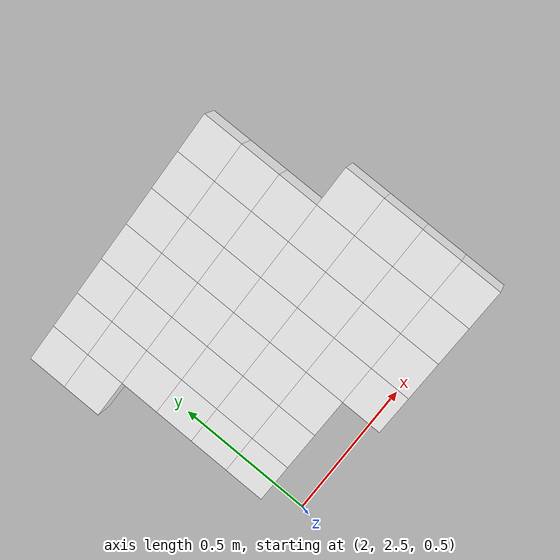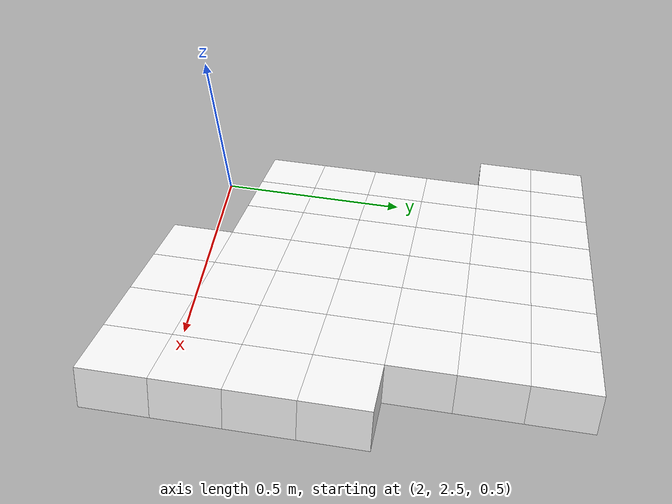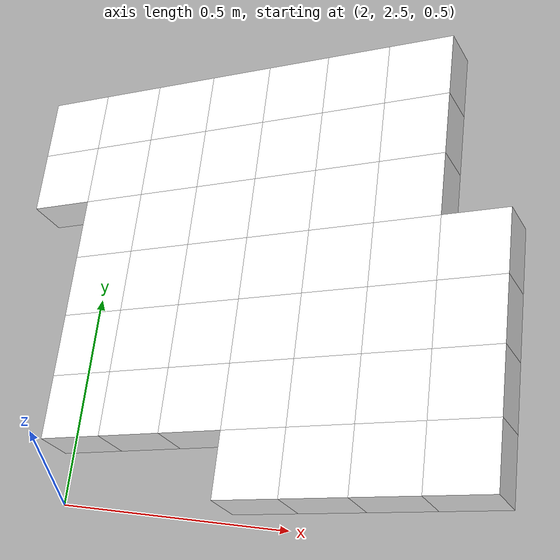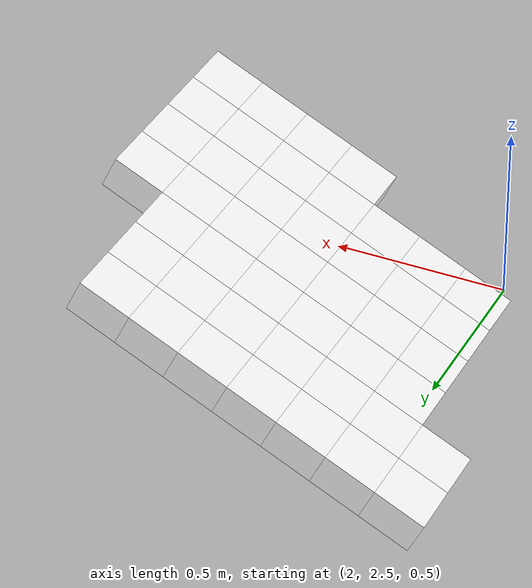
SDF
<sdf version="1.7">
 <world name="default">
  <include><uri>model://sun</uri></include>
  <model name="static_environment">
   <static>true</static>
   <link name="region_671">
    <pose>2.426885046534956 2.5499999999999994 0.7502299879138344 0.0 -0.45 0.0</pose>
    <collision name="region_671_collision">
     <geometry><box><size>0.15 0.15 0.1</size></box></geometry>
     <surface><friction><ode><mu>1.0</mu><mu2>1.0</mu2></ode></friction></surface>
    </collision>
    <visual name="region_671_visual">
     <geometry><box><size>0.15 0.15 0.1</size></box></geometry>
     <material><ambient>1.0 1.0 1.0 1.0</ambient><diffuse>1.0 1.0 1.0 1.0</diffuse></material>
    </visual>
   </link>
   <link name="region_672">
    <pose>2.5619521118878588 2.5499999999999994 0.815474818030519 0.0 -0.45 0.0</pose>
    <collision name="region_672_collision">
     <geometry><box><size>0.15 0.15 0.1</size></box></geometry>
     <surface><friction><ode><mu>1.0</mu><mu2>1.0</mu2></ode></friction></surface>
    </collision>
    <visual name="region_672_visual">
     <geometry><box><size>0.15 0.15 0.1</size></box></geometry>
     <material><ambient>1.0 1.0 1.0 1.0</ambient><diffuse>1.0 1.0 1.0 1.0</diffuse></material>
    </visual>
   </link>
   <link name="region_673">
    <pose>2.69701917724076 2.5499999999999994 0.8807196481472036 0.0 -0.45 0.0</pose>
    <collision name="region_673_collision">
     <geometry><box><size>0.15 0.15 0.1</size></box></geometry>
     <surface><friction><ode><mu>1.0</mu><mu2>1.0</mu2></ode></friction></surface>
    </collision>
    <visual name="region_673_visual">
     <geometry><box><size>0.15 0.15 0.1</size></box></geometry>
     <material><ambient>1.0 1.0 1.0 1.0</ambient><diffuse>1.0 1.0 1.0 1.0</diffuse></material>
    </visual>
   </link>
   <link name="region_674">
    <pose>2.832086242593662 2.5499999999999994 0.9459644782638886 0.0 -0.45 0.0</pose>
    <collision name="region_674_collision">
     <geometry><box><size>0.15 0.15 0.1</size></box></geometry>
     <surface><friction><ode><mu>1.0</mu><mu2>1.0</mu2></ode></friction></surface>
    </collision>
    <visual name="region_674_visual">
     <geometry><box><size>0.15 0.15 0.1</size></box></geometry>
     <material><ambient>1.0 1.0 1.0 1.0</ambient><diffuse>1.0 1.0 1.0 1.0</diffuse></material>
    </visual>
   </link>
   <link name="region_688">
    <pose>2.0216838504762515 2.6999999999999997 0.5544954975637805 0.0 -0.45 0.0</pose>
    <collision name="region_688_collision">
     <geometry><box><size>0.15 0.15 0.1</size></box></geometry>
     <surface><friction><ode><mu>1.0</mu><mu2>1.0</mu2></ode></friction></surface>
    </collision>
    <visual name="region_688_visual">
     <geometry><box><size>0.15 0.15 0.1</size></box></geometry>
     <material><ambient>1.0 1.0 1.0 1.0</ambient><diffuse>1.0 1.0 1.0 1.0</diffuse></material>
    </visual>
   </link>
   <link name="region_689">
    <pose>2.1567509158291527 2.6999999999999997 0.619740327680465 0.0 -0.45 0.0</pose>
    <collision name="region_689_collision">
     <geometry><box><size>0.15 0.15 0.1</size></box></geometry>
     <surface><friction><ode><mu>1.0</mu><mu2>1.0</mu2></ode></friction></surface>
    </collision>
    <visual name="region_689_visual">
     <geometry><box><size>0.15 0.15 0.1</size></box></geometry>
     <material><ambient>1.0 1.0 1.0 1.0</ambient><diffuse>1.0 1.0 1.0 1.0</diffuse></material>
    </visual>
   </link>
   <link name="region_690">
    <pose>2.2918179811820547 2.6999999999999997 0.6849851577971496 0.0 -0.45 0.0</pose>
    <collision name="region_690_collision">
     <geometry><box><size>0.15 0.15 0.1</size></box></geometry>
     <surface><friction><ode><mu>1.0</mu><mu2>1.0</mu2></ode></friction></surface>
    </collision>
    <visual name="region_690_visual">
     <geometry><box><size>0.15 0.15 0.1</size></box></geometry>
     <material><ambient>1.0 1.0 1.0 1.0</ambient><diffuse>1.0 1.0 1.0 1.0</diffuse></material>
    </visual>
   </link>
   <link name="region_691">
    <pose>2.426885046534956 2.6999999999999997 0.7502299879138344 0.0 -0.45 0.0</pose>
    <collision name="region_691_collision">
     <geometry><box><size>0.15 0.15 0.1</size></box></geometry>
     <surface><friction><ode><mu>1.0</mu><mu2>1.0</mu2></ode></friction></surface>
    </collision>
    <visual name="region_691_visual">
     <geometry><box><size>0.15 0.15 0.1</size></box></geometry>
     <material><ambient>1.0 1.0 1.0 1.0</ambient><diffuse>1.0 1.0 1.0 1.0</diffuse></material>
    </visual>
   </link>
   <link name="region_692">
    <pose>2.5619521118878588 2.6999999999999997 0.815474818030519 0.0 -0.45 0.0</pose>
    <collision name="region_692_collision">
     <geometry><box><size>0.15 0.15 0.1</size></box></geometry>
     <surface><friction><ode><mu>1.0</mu><mu2>1.0</mu2></ode></friction></surface>
    </collision>
    <visual name="region_692_visual">
     <geometry><box><size>0.15 0.15 0.1</size></box></geometry>
     <material><ambient>1.0 1.0 1.0 1.0</ambient><diffuse>1.0 1.0 1.0 1.0</diffuse></material>
    </visual>
   </link>
   <link name="region_693">
    <pose>2.69701917724076 2.6999999999999997 0.8807196481472036 0.0 -0.45 0.0</pose>
    <collision name="region_693_collision">
     <geometry><box><size>0.15 0.15 0.1</size></box></geometry>
     <surface><friction><ode><mu>1.0</mu><mu2>1.0</mu2></ode></friction></surface>
    </collision>
    <visual name="region_693_visual">
     <geometry><box><size>0.15 0.15 0.1</size></box></geometry>
     <material><ambient>1.0 1.0 1.0 1.0</ambient><diffuse>1.0 1.0 1.0 1.0</diffuse></material>
    </visual>
   </link>
   <link name="region_694">
    <pose>2.832086242593662 2.6999999999999997 0.9459644782638886 0.0 -0.45 0.0</pose>
    <collision name="region_694_collision">
     <geometry><box><size>0.15 0.15 0.1</size></box></geometry>
     <surface><friction><ode><mu>1.0</mu><mu2>1.0</mu2></ode></friction></surface>
    </collision>
    <visual name="region_694_visual">
     <geometry><box><size>0.15 0.15 0.1</size></box></geometry>
     <material><ambient>1.0 1.0 1.0 1.0</ambient><diffuse>1.0 1.0 1.0 1.0</diffuse></material>
    </visual>
   </link>
   <link name="region_708">
    <pose>2.0216838504762515 2.8499999999999996 0.5544954975637805 0.0 -0.45 0.0</pose>
    <collision name="region_708_collision">
     <geometry><box><size>0.15 0.15 0.1</size></box></geometry>
     <surface><friction><ode><mu>1.0</mu><mu2>1.0</mu2></ode></friction></surface>
    </collision>
    <visual name="region_708_visual">
     <geometry><box><size>0.15 0.15 0.1</size></box></geometry>
     <material><ambient>1.0 1.0 1.0 1.0</ambient><diffuse>1.0 1.0 1.0 1.0</diffuse></material>
    </visual>
   </link>
   <link name="region_709">
    <pose>2.1567509158291527 2.8499999999999996 0.619740327680465 0.0 -0.45 0.0</pose>
    <collision name="region_709_collision">
     <geometry><box><size>0.15 0.15 0.1</size></box></geometry>
     <surface><friction><ode><mu>1.0</mu><mu2>1.0</mu2></ode></friction></surface>
    </collision>
    <visual name="region_709_visual">
     <geometry><box><size>0.15 0.15 0.1</size></box></geometry>
     <material><ambient>1.0 1.0 1.0 1.0</ambient><diffuse>1.0 1.0 1.0 1.0</diffuse></material>
    </visual>
   </link>
   <link name="region_710">
    <pose>2.2918179811820547 2.8499999999999996 0.6849851577971496 0.0 -0.45 0.0</pose>
    <collision name="region_710_collision">
     <geometry><box><size>0.15 0.15 0.1</size></box></geometry>
     <surface><friction><ode><mu>1.0</mu><mu2>1.0</mu2></ode></friction></surface>
    </collision>
    <visual name="region_710_visual">
     <geometry><box><size>0.15 0.15 0.1</size></box></geometry>
     <material><ambient>1.0 1.0 1.0 1.0</ambient><diffuse>1.0 1.0 1.0 1.0</diffuse></material>
    </visual>
   </link>
   <link name="region_711">
    <pose>2.426885046534956 2.8499999999999996 0.7502299879138344 0.0 -0.45 0.0</pose>
    <collision name="region_711_collision">
     <geometry><box><size>0.15 0.15 0.1</size></box></geometry>
     <surface><friction><ode><mu>1.0</mu><mu2>1.0</mu2></ode></friction></surface>
    </collision>
    <visual name="region_711_visual">
     <geometry><box><size>0.15 0.15 0.1</size></box></geometry>
     <material><ambient>1.0 1.0 1.0 1.0</ambient><diffuse>1.0 1.0 1.0 1.0</diffuse></material>
    </visual>
   </link>
   <link name="region_712">
    <pose>2.5619521118878588 2.8499999999999996 0.815474818030519 0.0 -0.45 0.0</pose>
    <collision name="region_712_collision">
     <geometry><box><size>0.15 0.15 0.1</size></box></geometry>
     <surface><friction><ode><mu>1.0</mu><mu2>1.0</mu2></ode></friction></surface>
    </collision>
    <visual name="region_712_visual">
     <geometry><box><size>0.15 0.15 0.1</size></box></geometry>
     <material><ambient>1.0 1.0 1.0 1.0</ambient><diffuse>1.0 1.0 1.0 1.0</diffuse></material>
    </visual>
   </link>
   <link name="region_713">
    <pose>2.69701917724076 2.8499999999999996 0.8807196481472036 0.0 -0.45 0.0</pose>
    <collision name="region_713_collision">
     <geometry><box><size>0.15 0.15 0.1</size></box></geometry>
     <surface><friction><ode><mu>1.0</mu><mu2>1.0</mu2></ode></friction></surface>
    </collision>
    <visual name="region_713_visual">
     <geometry><box><size>0.15 0.15 0.1</size></box></geometry>
     <material><ambient>1.0 1.0 1.0 1.0</ambient><diffuse>1.0 1.0 1.0 1.0</diffuse></material>
    </visual>
   </link>
   <link name="region_714">
    <pose>2.832086242593662 2.8499999999999996 0.9459644782638886 0.0 -0.45 0.0</pose>
    <collision name="region_714_collision">
     <geometry><box><size>0.15 0.15 0.1</size></box></geometry>
     <surface><friction><ode><mu>1.0</mu><mu2>1.0</mu2></ode></friction></surface>
    </collision>
    <visual name="region_714_visual">
     <geometry><box><size>0.15 0.15 0.1</size></box></geometry>
     <material><ambient>1.0 1.0 1.0 1.0</ambient><diffuse>1.0 1.0 1.0 1.0</diffuse></material>
    </visual>
   </link>
   <link name="region_728">
    <pose>2.0216838504762515 2.9999999999999996 0.5544954975637805 0.0 -0.45 0.0</pose>
    <collision name="region_728_collision">
     <geometry><box><size>0.15 0.15 0.1</size></box></geometry>
     <surface><friction><ode><mu>1.0</mu><mu2>1.0</mu2></ode></friction></surface>
    </collision>
    <visual name="region_728_visual">
     <geometry><box><size>0.15 0.15 0.1</size></box></geometry>
     <material><ambient>1.0 1.0 1.0 1.0</ambient><diffuse>1.0 1.0 1.0 1.0</diffuse></material>
    </visual>
   </link>
   <link name="region_729">
    <pose>2.1567509158291527 2.9999999999999996 0.619740327680465 0.0 -0.45 0.0</pose>
    <collision name="region_729_collision">
     <geometry><box><size>0.15 0.15 0.1</size></box></geometry>
     <surface><friction><ode><mu>1.0</mu><mu2>1.0</mu2></ode></friction></surface>
    </collision>
    <visual name="region_729_visual">
     <geometry><box><size>0.15 0.15 0.1</size></box></geometry>
     <material><ambient>1.0 1.0 1.0 1.0</ambient><diffuse>1.0 1.0 1.0 1.0</diffuse></material>
    </visual>
   </link>
   <link name="region_730">
    <pose>2.2918179811820547 2.9999999999999996 0.6849851577971496 0.0 -0.45 0.0</pose>
    <collision name="region_730_collision">
     <geometry><box><size>0.15 0.15 0.1</size></box></geometry>
     <surface><friction><ode><mu>1.0</mu><mu2>1.0</mu2></ode></friction></surface>
    </collision>
    <visual name="region_730_visual">
     <geometry><box><size>0.15 0.15 0.1</size></box></geometry>
     <material><ambient>1.0 1.0 1.0 1.0</ambient><diffuse>1.0 1.0 1.0 1.0</diffuse></material>
    </visual>
   </link>
   <link name="region_731">
    <pose>2.426885046534956 2.9999999999999996 0.7502299879138344 0.0 -0.45 0.0</pose>
    <collision name="region_731_collision">
     <geometry><box><size>0.15 0.15 0.1</size></box></geometry>
     <surface><friction><ode><mu>1.0</mu><mu2>1.0</mu2></ode></friction></surface>
    </collision>
    <visual name="region_731_visual">
     <geometry><box><size>0.15 0.15 0.1</size></box></geometry>
     <material><ambient>1.0 1.0 1.0 1.0</ambient><diffuse>1.0 1.0 1.0 1.0</diffuse></material>
    </visual>
   </link>
   <link name="region_732">
    <pose>2.5619521118878588 2.9999999999999996 0.815474818030519 0.0 -0.45 0.0</pose>
    <collision name="region_732_collision">
     <geometry><box><size>0.15 0.15 0.1</size></box></geometry>
     <surface><friction><ode><mu>1.0</mu><mu2>1.0</mu2></ode></friction></surface>
    </collision>
    <visual name="region_732_visual">
     <geometry><box><size>0.15 0.15 0.1</size></box></geometry>
     <material><ambient>1.0 1.0 1.0 1.0</ambient><diffuse>1.0 1.0 1.0 1.0</diffuse></material>
    </visual>
   </link>
   <link name="region_733">
    <pose>2.69701917724076 2.9999999999999996 0.8807196481472036 0.0 -0.45 0.0</pose>
    <collision name="region_733_collision">
     <geometry><box><size>0.15 0.15 0.1</size></box></geometry>
     <surface><friction><ode><mu>1.0</mu><mu2>1.0</mu2></ode></friction></surface>
    </collision>
    <visual name="region_733_visual">
     <geometry><box><size>0.15 0.15 0.1</size></box></geometry>
     <material><ambient>1.0 1.0 1.0 1.0</ambient><diffuse>1.0 1.0 1.0 1.0</diffuse></material>
    </visual>
   </link>
   <link name="region_734">
    <pose>2.832086242593662 2.9999999999999996 0.9459644782638886 0.0 -0.45 0.0</pose>
    <collision name="region_734_collision">
     <geometry><box><size>0.15 0.15 0.1</size></box></geometry>
     <surface><friction><ode><mu>1.0</mu><mu2>1.0</mu2></ode></friction></surface>
    </collision>
    <visual name="region_734_visual">
     <geometry><box><size>0.15 0.15 0.1</size></box></geometry>
     <material><ambient>1.0 1.0 1.0 1.0</ambient><diffuse>1.0 1.0 1.0 1.0</diffuse></material>
    </visual>
   </link>
   <link name="region_748">
    <pose>2.0216838504762515 3.1499999999999995 0.5544954975637805 0.0 -0.45 0.0</pose>
    <collision name="region_748_collision">
     <geometry><box><size>0.15 0.15 0.1</size></box></geometry>
     <surface><friction><ode><mu>1.0</mu><mu2>1.0</mu2></ode></friction></surface>
    </collision>
    <visual name="region_748_visual">
     <geometry><box><size>0.15 0.15 0.1</size></box></geometry>
     <material><ambient>1.0 1.0 1.0 1.0</ambient><diffuse>1.0 1.0 1.0 1.0</diffuse></material>
    </visual>
   </link>
   <link name="region_749">
    <pose>2.1567509158291527 3.1499999999999995 0.619740327680465 0.0 -0.45 0.0</pose>
    <collision name="region_749_collision">
     <geometry><box><size>0.15 0.15 0.1</size></box></geometry>
     <surface><friction><ode><mu>1.0</mu><mu2>1.0</mu2></ode></friction></surface>
    </collision>
    <visual name="region_749_visual">
     <geometry><box><size>0.15 0.15 0.1</size></box></geometry>
     <material><ambient>1.0 1.0 1.0 1.0</ambient><diffuse>1.0 1.0 1.0 1.0</diffuse></material>
    </visual>
   </link>
   <link name="region_750">
    <pose>2.2918179811820547 3.1499999999999995 0.6849851577971496 0.0 -0.45 0.0</pose>
    <collision name="region_750_collision">
     <geometry><box><size>0.15 0.15 0.1</size></box></geometry>
     <surface><friction><ode><mu>1.0</mu><mu2>1.0</mu2></ode></friction></surface>
    </collision>
    <visual name="region_750_visual">
     <geometry><box><size>0.15 0.15 0.1</size></box></geometry>
     <material><ambient>1.0 1.0 1.0 1.0</ambient><diffuse>1.0 1.0 1.0 1.0</diffuse></material>
    </visual>
   </link>
   <link name="region_751">
    <pose>2.426885046534956 3.1499999999999995 0.7502299879138344 0.0 -0.45 0.0</pose>
    <collision name="region_751_collision">
     <geometry><box><size>0.15 0.15 0.1</size></box></geometry>
     <surface><friction><ode><mu>1.0</mu><mu2>1.0</mu2></ode></friction></surface>
    </collision>
    <visual name="region_751_visual">
     <geometry><box><size>0.15 0.15 0.1</size></box></geometry>
     <material><ambient>1.0 1.0 1.0 1.0</ambient><diffuse>1.0 1.0 1.0 1.0</diffuse></material>
    </visual>
   </link>
   <link name="region_752">
    <pose>2.5619521118878588 3.1499999999999995 0.815474818030519 0.0 -0.45 0.0</pose>
    <collision name="region_752_collision">
     <geometry><box><size>0.15 0.15 0.1</size></box></geometry>
     <surface><friction><ode><mu>1.0</mu><mu2>1.0</mu2></ode></friction></surface>
    </collision>
    <visual name="region_752_visual">
     <geometry><box><size>0.15 0.15 0.1</size></box></geometry>
     <material><ambient>1.0 1.0 1.0 1.0</ambient><diffuse>1.0 1.0 1.0 1.0</diffuse></material>
    </visual>
   </link>
   <link name="region_753">
    <pose>2.69701917724076 3.1499999999999995 0.8807196481472036 0.0 -0.45 0.0</pose>
    <collision name="region_753_collision">
     <geometry><box><size>0.15 0.15 0.1</size></box></geometry>
     <surface><friction><ode><mu>1.0</mu><mu2>1.0</mu2></ode></friction></surface>
    </collision>
    <visual name="region_753_visual">
     <geometry><box><size>0.15 0.15 0.1</size></box></geometry>
     <material><ambient>1.0 1.0 1.0 1.0</ambient><diffuse>1.0 1.0 1.0 1.0</diffuse></material>
    </visual>
   </link>
   <link name="region_767">
    <pose>1.88661678512335 3.2999999999999994 0.4892506674470961 0.0 -0.45 0.0</pose>
    <collision name="region_767_collision">
     <geometry><box><size>0.15 0.15 0.1</size></box></geometry>
     <surface><friction><ode><mu>1.0</mu><mu2>1.0</mu2></ode></friction></surface>
    </collision>
    <visual name="region_767_visual">
     <geometry><box><size>0.15 0.15 0.1</size></box></geometry>
     <material><ambient>1.0 1.0 1.0 1.0</ambient><diffuse>1.0 1.0 1.0 1.0</diffuse></material>
    </visual>
   </link>
   <link name="region_768">
    <pose>2.0216838504762515 3.2999999999999994 0.5544954975637805 0.0 -0.45 0.0</pose>
    <collision name="region_768_collision">
     <geometry><box><size>0.15 0.15 0.1</size></box></geometry>
     <surface><friction><ode><mu>1.0</mu><mu2>1.0</mu2></ode></friction></surface>
    </collision>
    <visual name="region_768_visual">
     <geometry><box><size>0.15 0.15 0.1</size></box></geometry>
     <material><ambient>1.0 1.0 1.0 1.0</ambient><diffuse>1.0 1.0 1.0 1.0</diffuse></material>
    </visual>
   </link>
   <link name="region_769">
    <pose>2.1567509158291527 3.2999999999999994 0.619740327680465 0.0 -0.45 0.0</pose>
    <collision name="region_769_collision">
     <geometry><box><size>0.15 0.15 0.1</size></box></geometry>
     <surface><friction><ode><mu>1.0</mu><mu2>1.0</mu2></ode></friction></surface>
    </collision>
    <visual name="region_769_visual">
     <geometry><box><size>0.15 0.15 0.1</size></box></geometry>
     <material><ambient>1.0 1.0 1.0 1.0</ambient><diffuse>1.0 1.0 1.0 1.0</diffuse></material>
    </visual>
   </link>
   <link name="region_770">
    <pose>2.2918179811820547 3.2999999999999994 0.6849851577971496 0.0 -0.45 0.0</pose>
    <collision name="region_770_collision">
     <geometry><box><size>0.15 0.15 0.1</size></box></geometry>
     <surface><friction><ode><mu>1.0</mu><mu2>1.0</mu2></ode></friction></surface>
    </collision>
    <visual name="region_770_visual">
     <geometry><box><size>0.15 0.15 0.1</size></box></geometry>
     <material><ambient>1.0 1.0 1.0 1.0</ambient><diffuse>1.0 1.0 1.0 1.0</diffuse></material>
    </visual>
   </link>
   <link name="region_771">
    <pose>2.426885046534956 3.2999999999999994 0.7502299879138344 0.0 -0.45 0.0</pose>
    <collision name="region_771_collision">
     <geometry><box><size>0.15 0.15 0.1</size></box></geometry>
     <surface><friction><ode><mu>1.0</mu><mu2>1.0</mu2></ode></friction></surface>
    </collision>
    <visual name="region_771_visual">
     <geometry><box><size>0.15 0.15 0.1</size></box></geometry>
     <material><ambient>1.0 1.0 1.0 1.0</ambient><diffuse>1.0 1.0 1.0 1.0</diffuse></material>
    </visual>
   </link>
   <link name="region_772">
    <pose>2.5619521118878588 3.2999999999999994 0.815474818030519 0.0 -0.45 0.0</pose>
    <collision name="region_772_collision">
     <geometry><box><size>0.15 0.15 0.1</size></box></geometry>
     <surface><friction><ode><mu>1.0</mu><mu2>1.0</mu2></ode></friction></surface>
    </collision>
    <visual name="region_772_visual">
     <geometry><box><size>0.15 0.15 0.1</size></box></geometry>
     <material><ambient>1.0 1.0 1.0 1.0</ambient><diffuse>1.0 1.0 1.0 1.0</diffuse></material>
    </visual>
   </link>
   <link name="region_773">
    <pose>2.69701917724076 3.2999999999999994 0.8807196481472036 0.0 -0.45 0.0</pose>
    <collision name="region_773_collision">
     <geometry><box><size>0.15 0.15 0.1</size></box></geometry>
     <surface><friction><ode><mu>1.0</mu><mu2>1.0</mu2></ode></friction></surface>
    </collision>
    <visual name="region_773_visual">
     <geometry><box><size>0.15 0.15 0.1</size></box></geometry>
     <material><ambient>1.0 1.0 1.0 1.0</ambient><diffuse>1.0 1.0 1.0 1.0</diffuse></material>
    </visual>
   </link>
   <link name="region_787">
    <pose>1.88661678512335 3.4499999999999993 0.4892506674470961 0.0 -0.45 0.0</pose>
    <collision name="region_787_collision">
     <geometry><box><size>0.15 0.15 0.1</size></box></geometry>
     <surface><friction><ode><mu>1.0</mu><mu2>1.0</mu2></ode></friction></surface>
    </collision>
    <visual name="region_787_visual">
     <geometry><box><size>0.15 0.15 0.1</size></box></geometry>
     <material><ambient>1.0 1.0 1.0 1.0</ambient><diffuse>1.0 1.0 1.0 1.0</diffuse></material>
    </visual>
   </link>
   <link name="region_788">
    <pose>2.0216838504762515 3.4499999999999993 0.5544954975637805 0.0 -0.45 0.0</pose>
    <collision name="region_788_collision">
     <geometry><box><size>0.15 0.15 0.1</size></box></geometry>
     <surface><friction><ode><mu>1.0</mu><mu2>1.0</mu2></ode></friction></surface>
    </collision>
    <visual name="region_788_visual">
     <geometry><box><size>0.15 0.15 0.1</size></box></geometry>
     <material><ambient>1.0 1.0 1.0 1.0</ambient><diffuse>1.0 1.0 1.0 1.0</diffuse></material>
    </visual>
   </link>
   <link name="region_789">
    <pose>2.1567509158291527 3.4499999999999993 0.619740327680465 0.0 -0.45 0.0</pose>
    <collision name="region_789_collision">
     <geometry><box><size>0.15 0.15 0.1</size></box></geometry>
     <surface><friction><ode><mu>1.0</mu><mu2>1.0</mu2></ode></friction></surface>
    </collision>
    <visual name="region_789_visual">
     <geometry><box><size>0.15 0.15 0.1</size></box></geometry>
     <material><ambient>1.0 1.0 1.0 1.0</ambient><diffuse>1.0 1.0 1.0 1.0</diffuse></material>
    </visual>
   </link>
   <link name="region_790">
    <pose>2.2918179811820547 3.4499999999999993 0.6849851577971496 0.0 -0.45 0.0</pose>
    <collision name="region_790_collision">
     <geometry><box><size>0.15 0.15 0.1</size></box></geometry>
     <surface><friction><ode><mu>1.0</mu><mu2>1.0</mu2></ode></friction></surface>
    </collision>
    <visual name="region_790_visual">
     <geometry><box><size>0.15 0.15 0.1</size></box></geometry>
     <material><ambient>1.0 1.0 1.0 1.0</ambient><diffuse>1.0 1.0 1.0 1.0</diffuse></material>
    </visual>
   </link>
   <link name="region_791">
    <pose>2.426885046534956 3.4499999999999993 0.7502299879138344 0.0 -0.45 0.0</pose>
    <collision name="region_791_collision">
     <geometry><box><size>0.15 0.15 0.1</size></box></geometry>
     <surface><friction><ode><mu>1.0</mu><mu2>1.0</mu2></ode></friction></surface>
    </collision>
    <visual name="region_791_visual">
     <geometry><box><size>0.15 0.15 0.1</size></box></geometry>
     <material><ambient>1.0 1.0 1.0 1.0</ambient><diffuse>1.0 1.0 1.0 1.0</diffuse></material>
    </visual>
   </link>
   <link name="region_792">
    <pose>2.5619521118878588 3.4499999999999993 0.815474818030519 0.0 -0.45 0.0</pose>
    <collision name="region_792_collision">
     <geometry><box><size>0.15 0.15 0.1</size></box></geometry>
     <surface><friction><ode><mu>1.0</mu><mu2>1.0</mu2></ode></friction></surface>
    </collision>
    <visual name="region_792_visual">
     <geometry><box><size>0.15 0.15 0.1</size></box></geometry>
     <material><ambient>1.0 1.0 1.0 1.0</ambient><diffuse>1.0 1.0 1.0 1.0</diffuse></material>
    </visual>
   </link>
   <link name="region_793">
    <pose>2.69701917724076 3.4499999999999993 0.8807196481472036 0.0 -0.45 0.0</pose>
    <collision name="region_793_collision">
     <geometry><box><size>0.15 0.15 0.1</size></box></geometry>
     <surface><friction><ode><mu>1.0</mu><mu2>1.0</mu2></ode></friction></surface>
    </collision>
    <visual name="region_793_visual">
     <geometry><box><size>0.15 0.15 0.1</size></box></geometry>
     <material><ambient>1.0 1.0 1.0 1.0</ambient><diffuse>1.0 1.0 1.0 1.0</diffuse></material>
    </visual>
   </link>
  </model>
 </world>
</sdf>
